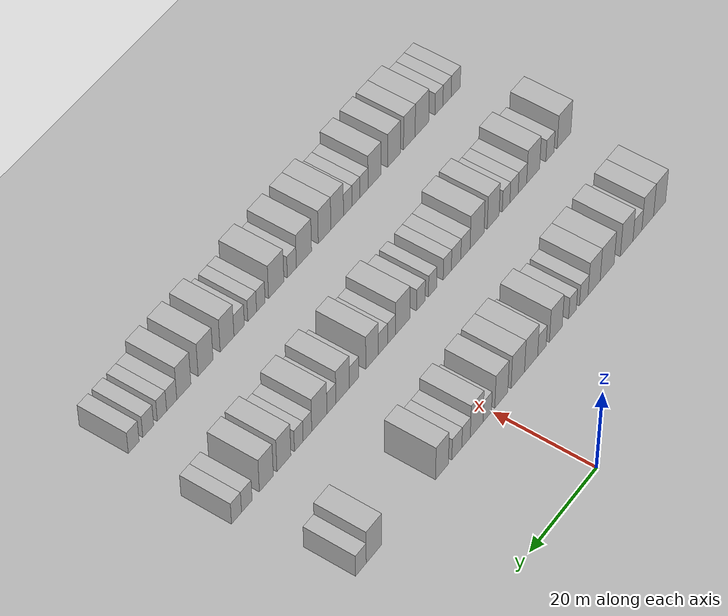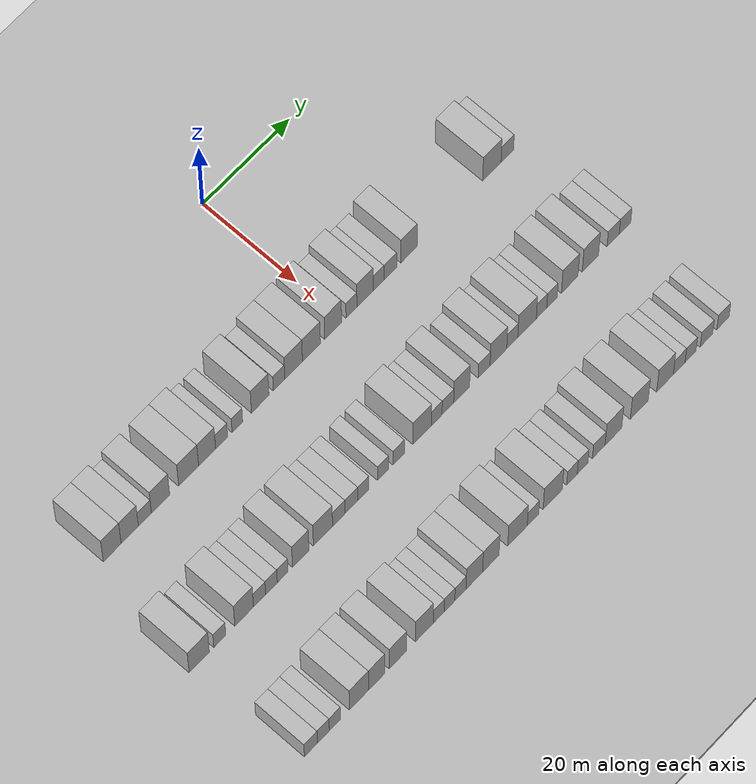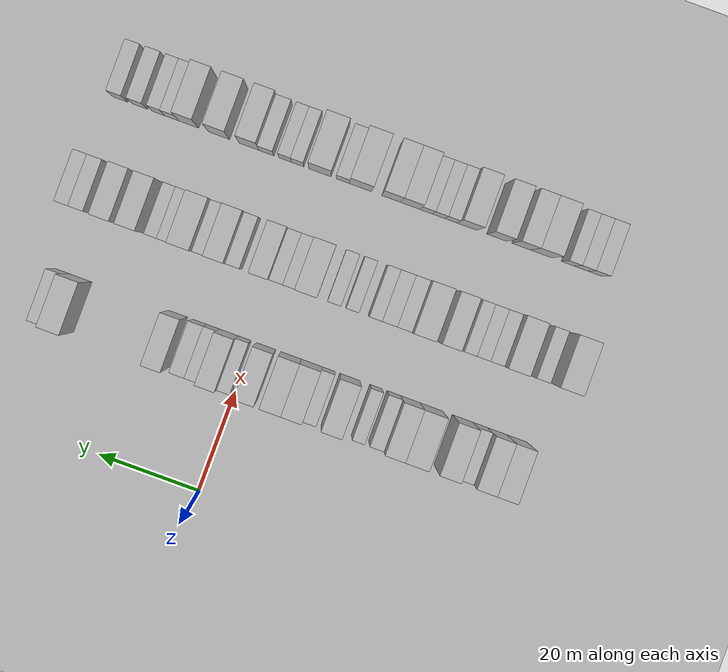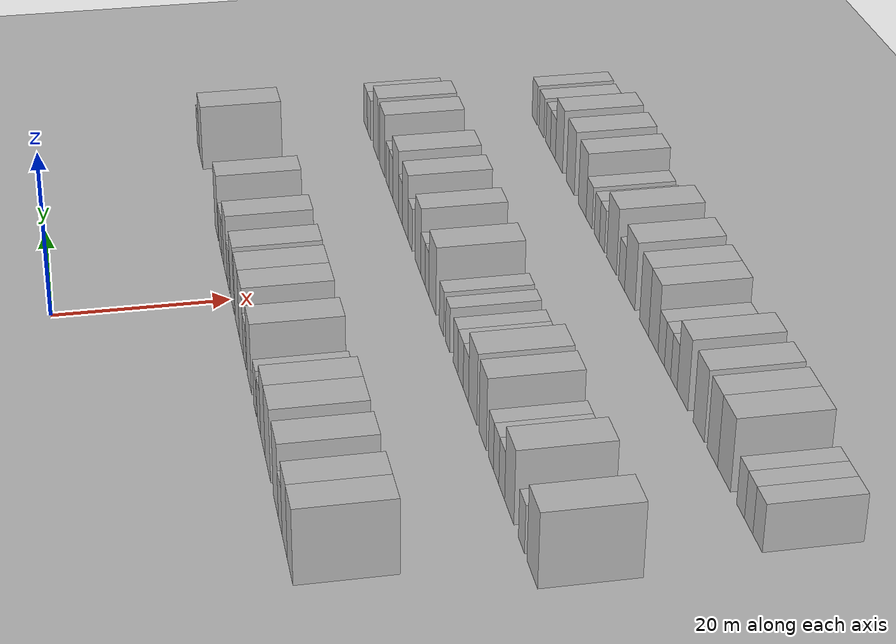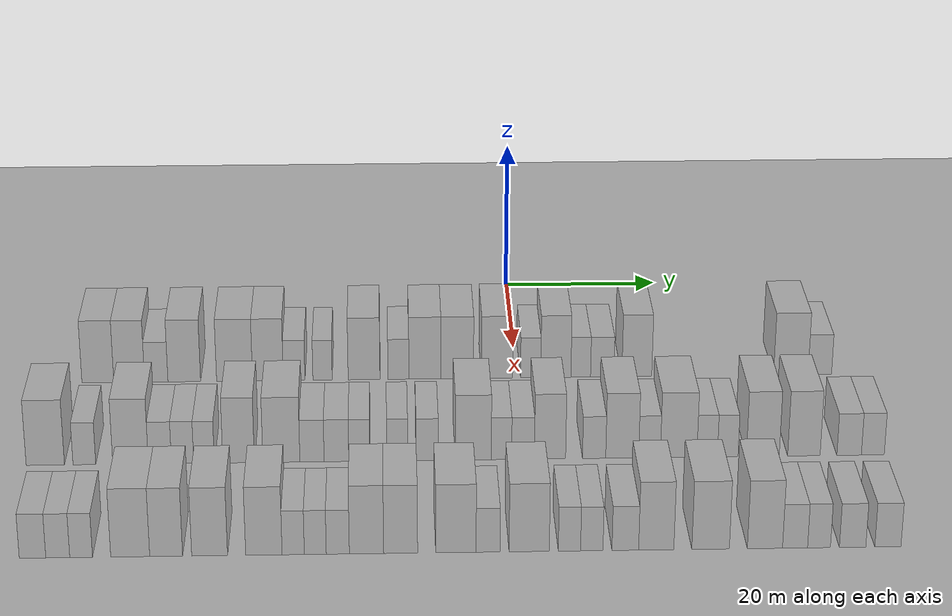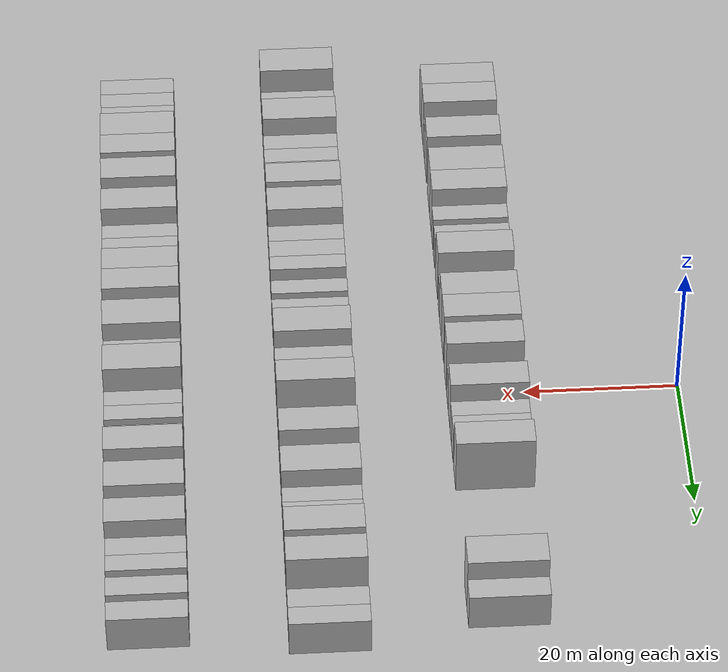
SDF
<sdf version="1.6">
 <world name="default">
  <include><name>ground_plane_1</name><uri>model://HANNAS_ground_plane</uri></include>
  <include>
   <name>ground_plane_2</name>
   <uri>model://HANNAS_ground_plane</uri>
   <pose>100 0 0  0 0 0</pose>
  </include>
  <model name="building_50">
   <static>1</static>
   <pose>25.0000 -52.4104 0 0.000000 0.000000 0.000000</pose>
   <link name="link">
    <pose>0 0 4.50 0 0 0</pose>
    <collision name="collision"><geometry><box><size>10.0000 3.9737 9.0000</size></box></geometry></collision>
    <visual name="visual">
     <cast_shadows>0</cast_shadows>
     <geometry><box><size>10.0000 3.9737 9.0000</size></box></geometry>
     <material>
      <script>
       <uri>model://HANNAS_wall/materials/scripts</uri>
       <uri>model://HANNAS_wall/materials/textures</uri>
       <name>vrc/HANNAS_wall</name>
      </script>
     </material>
    </visual>
   </link>
  </model>
  <model name="building_51">
   <static>1</static>
   <pose>25.0000 -48.5002 0 0.000000 0.000000 0.000000</pose>
   <link name="link">
    <pose>0 0 4.50 0 0 0</pose>
    <collision name="collision"><geometry><box><size>10.0000 3.8467 9.0000</size></box></geometry></collision>
    <visual name="visual">
     <cast_shadows>0</cast_shadows>
     <geometry><box><size>10.0000 3.8467 9.0000</size></box></geometry>
     <material>
      <script>
       <uri>model://HANNAS_wall/materials/scripts</uri>
       <uri>model://HANNAS_wall/materials/textures</uri>
       <name>vrc/HANNAS_wall</name>
      </script>
     </material>
    </visual>
   </link>
  </model>
  <model name="building_52">
   <static>1</static>
   <pose>25.0000 -45.1239 0 0.000000 0.000000 0.000000</pose>
   <link name="link">
    <pose>0 0 3.00 0 0 0</pose>
    <collision name="collision"><geometry><box><size>10.0000 2.9060 6.0000</size></box></geometry></collision>
    <visual name="visual">
     <cast_shadows>0</cast_shadows>
     <geometry><box><size>10.0000 2.9060 6.0000</size></box></geometry>
     <material>
      <script>
       <uri>model://HANNAS_wall/materials/scripts</uri>
       <uri>model://HANNAS_wall/materials/textures</uri>
       <name>vrc/HANNAS_wall</name>
      </script>
     </material>
    </visual>
   </link>
  </model>
  <model name="building_53">
   <static>1</static>
   <pose>25.0000 -41.6322 0 0.000000 0.000000 0.000000</pose>
   <link name="link">
    <pose>0 0 4.50 0 0 0</pose>
    <collision name="collision"><geometry><box><size>10.0000 4.0774 9.0000</size></box></geometry></collision>
    <visual name="visual">
     <cast_shadows>0</cast_shadows>
     <geometry><box><size>10.0000 4.0774 9.0000</size></box></geometry>
     <material>
      <script>
       <uri>model://HANNAS_wall/materials/scripts</uri>
       <uri>model://HANNAS_wall/materials/textures</uri>
       <name>vrc/HANNAS_wall</name>
      </script>
     </material>
    </visual>
   </link>
  </model>
  <model name="building_54">
   <static>1</static>
   <pose>25.0000 -35.3489 0 0.000000 0.000000 0.000000</pose>
   <link name="link">
    <pose>0 0 4.50 0 0 0</pose>
    <collision name="collision"><geometry><box><size>10.0000 4.4893 9.0000</size></box></geometry></collision>
    <visual name="visual">
     <cast_shadows>0</cast_shadows>
     <geometry><box><size>10.0000 4.4893 9.0000</size></box></geometry>
     <material>
      <script>
       <uri>model://HANNAS_wall/materials/scripts</uri>
       <uri>model://HANNAS_wall/materials/textures</uri>
       <name>vrc/HANNAS_wall</name>
      </script>
     </material>
    </visual>
   </link>
  </model>
  <model name="building_55">
   <static>1</static>
   <pose>25.0000 -31.1800 0 0.000000 0.000000 0.000000</pose>
   <link name="link">
    <pose>0 0 4.50 0 0 0</pose>
    <collision name="collision"><geometry><box><size>10.0000 3.8484 9.0000</size></box></geometry></collision>
    <visual name="visual">
     <cast_shadows>0</cast_shadows>
     <geometry><box><size>10.0000 3.8484 9.0000</size></box></geometry>
     <material>
      <script>
       <uri>model://HANNAS_wall/materials/scripts</uri>
       <uri>model://HANNAS_wall/materials/textures</uri>
       <name>vrc/HANNAS_wall</name>
      </script>
     </material>
    </visual>
   </link>
  </model>
  <model name="building_56">
   <static>1</static>
   <pose>25.0000 -27.9045 0 0.000000 0.000000 0.000000</pose>
   <link name="link">
    <pose>0 0 3.00 0 0 0</pose>
    <collision name="collision"><geometry><box><size>10.0000 2.7028 6.0000</size></box></geometry></collision>
    <visual name="visual">
     <cast_shadows>0</cast_shadows>
     <geometry><box><size>10.0000 2.7028 6.0000</size></box></geometry>
     <material>
      <script>
       <uri>model://HANNAS_wall/materials/scripts</uri>
       <uri>model://HANNAS_wall/materials/textures</uri>
       <name>vrc/HANNAS_wall</name>
      </script>
     </material>
    </visual>
   </link>
  </model>
  <model name="building_57">
   <static>1</static>
   <pose>25.0000 -24.3475 0 0.000000 0.000000 0.000000</pose>
   <link name="link">
    <pose>0 0 3.00 0 0 0</pose>
    <collision name="collision"><geometry><box><size>10.0000 2.4111 6.0000</size></box></geometry></collision>
    <visual name="visual">
     <cast_shadows>0</cast_shadows>
     <geometry><box><size>10.0000 2.4111 6.0000</size></box></geometry>
     <material>
      <script>
       <uri>model://HANNAS_wall/materials/scripts</uri>
       <uri>model://HANNAS_wall/materials/textures</uri>
       <name>vrc/HANNAS_wall</name>
      </script>
     </material>
    </visual>
   </link>
  </model>
  <model name="building_58">
   <static>1</static>
   <pose>25.0000 -19.1495 0 0.000000 0.000000 0.000000</pose>
   <link name="link">
    <pose>0 0 4.50 0 0 0</pose>
    <collision name="collision"><geometry><box><size>10.0000 3.9849 9.0000</size></box></geometry></collision>
    <visual name="visual">
     <cast_shadows>0</cast_shadows>
     <geometry><box><size>10.0000 3.9849 9.0000</size></box></geometry>
     <material>
      <script>
       <uri>model://HANNAS_wall/materials/scripts</uri>
       <uri>model://HANNAS_wall/materials/textures</uri>
       <name>vrc/HANNAS_wall</name>
      </script>
     </material>
    </visual>
   </link>
  </model>
  <model name="building_59">
   <static>1</static>
   <pose>25.0000 -14.8439 0 0.000000 0.000000 0.000000</pose>
   <link name="link">
    <pose>0 0 3.00 0 0 0</pose>
    <collision name="collision"><geometry><box><size>10.0000 2.6263 6.0000</size></box></geometry></collision>
    <visual name="visual">
     <cast_shadows>0</cast_shadows>
     <geometry><box><size>10.0000 2.6263 6.0000</size></box></geometry>
     <material>
      <script>
       <uri>model://HANNAS_wall/materials/scripts</uri>
       <uri>model://HANNAS_wall/materials/textures</uri>
       <name>vrc/HANNAS_wall</name>
      </script>
     </material>
    </visual>
   </link>
  </model>
  <model name="building_60">
   <static>1</static>
   <pose>25.0000 -11.5195 0 0.000000 0.000000 0.000000</pose>
   <link name="link">
    <pose>0 0 4.50 0 0 0</pose>
    <collision name="collision"><geometry><box><size>10.0000 4.0225 9.0000</size></box></geometry></collision>
    <visual name="visual">
     <cast_shadows>0</cast_shadows>
     <geometry><box><size>10.0000 4.0225 9.0000</size></box></geometry>
     <material>
      <script>
       <uri>model://HANNAS_wall/materials/scripts</uri>
       <uri>model://HANNAS_wall/materials/textures</uri>
       <name>vrc/HANNAS_wall</name>
      </script>
     </material>
    </visual>
   </link>
  </model>
  <model name="building_61">
   <static>1</static>
   <pose>25.0000 -7.4637 0 0.000000 0.000000 0.000000</pose>
   <link name="link">
    <pose>0 0 4.50 0 0 0</pose>
    <collision name="collision"><geometry><box><size>10.0000 4.0891 9.0000</size></box></geometry></collision>
    <visual name="visual">
     <cast_shadows>0</cast_shadows>
     <geometry><box><size>10.0000 4.0891 9.0000</size></box></geometry>
     <material>
      <script>
       <uri>model://HANNAS_wall/materials/scripts</uri>
       <uri>model://HANNAS_wall/materials/textures</uri>
       <name>vrc/HANNAS_wall</name>
      </script>
     </material>
    </visual>
   </link>
  </model>
  <model name="building_62">
   <static>1</static>
   <pose>25.0000 -2.4690 0 0.000000 0.000000 0.000000</pose>
   <link name="link">
    <pose>0 0 4.50 0 0 0</pose>
    <collision name="collision"><geometry><box><size>10.0000 3.9004 9.0000</size></box></geometry></collision>
    <visual name="visual">
     <cast_shadows>0</cast_shadows>
     <geometry><box><size>10.0000 3.9004 9.0000</size></box></geometry>
     <material>
      <script>
       <uri>model://HANNAS_wall/materials/scripts</uri>
       <uri>model://HANNAS_wall/materials/textures</uri>
       <name>vrc/HANNAS_wall</name>
      </script>
     </material>
    </visual>
   </link>
  </model>
  <model name="building_63">
   <static>1</static>
   <pose>25.0000 1.7463 0 0.000000 0.000000 0.000000</pose>
   <link name="link">
    <pose>0 0 3.00 0 0 0</pose>
    <collision name="collision"><geometry><box><size>10.0000 2.5301 6.0000</size></box></geometry></collision>
    <visual name="visual">
     <cast_shadows>0</cast_shadows>
     <geometry><box><size>10.0000 2.5301 6.0000</size></box></geometry>
     <material>
      <script>
       <uri>model://HANNAS_wall/materials/scripts</uri>
       <uri>model://HANNAS_wall/materials/textures</uri>
       <name>vrc/HANNAS_wall</name>
      </script>
     </material>
    </visual>
   </link>
  </model>
  <model name="building_64">
   <static>1</static>
   <pose>25.0000 4.9038 0 0.000000 0.000000 0.000000</pose>
   <link name="link">
    <pose>0 0 4.50 0 0 0</pose>
    <collision name="collision"><geometry><box><size>10.0000 3.7849 9.0000</size></box></geometry></collision>
    <visual name="visual">
     <cast_shadows>0</cast_shadows>
     <geometry><box><size>10.0000 3.7849 9.0000</size></box></geometry>
     <material>
      <script>
       <uri>model://HANNAS_wall/materials/scripts</uri>
       <uri>model://HANNAS_wall/materials/textures</uri>
       <name>vrc/HANNAS_wall</name>
      </script>
     </material>
    </visual>
   </link>
  </model>
  <model name="building_65">
   <static>1</static>
   <pose>25.0000 8.0328 0 0.000000 0.000000 0.000000</pose>
   <link name="link">
    <pose>0 0 3.00 0 0 0</pose>
    <collision name="collision"><geometry><box><size>10.0000 2.4731 6.0000</size></box></geometry></collision>
    <visual name="visual">
     <cast_shadows>0</cast_shadows>
     <geometry><box><size>10.0000 2.4731 6.0000</size></box></geometry>
     <material>
      <script>
       <uri>model://HANNAS_wall/materials/scripts</uri>
       <uri>model://HANNAS_wall/materials/textures</uri>
       <name>vrc/HANNAS_wall</name>
      </script>
     </material>
    </visual>
   </link>
  </model>
  <model name="building_66">
   <static>1</static>
   <pose>25.0000 10.7379 0 0.000000 0.000000 0.000000</pose>
   <link name="link">
    <pose>0 0 3.00 0 0 0</pose>
    <collision name="collision"><geometry><box><size>10.0000 2.9371 6.0000</size></box></geometry></collision>
    <visual name="visual">
     <cast_shadows>0</cast_shadows>
     <geometry><box><size>10.0000 2.9371 6.0000</size></box></geometry>
     <material>
      <script>
       <uri>model://HANNAS_wall/materials/scripts</uri>
       <uri>model://HANNAS_wall/materials/textures</uri>
       <name>vrc/HANNAS_wall</name>
      </script>
     </material>
    </visual>
   </link>
  </model>
  <model name="building_67">
   <static>1</static>
   <pose>25.0000 15.0855 0 0.000000 0.000000 0.000000</pose>
   <link name="link">
    <pose>0 0 4.50 0 0 0</pose>
    <collision name="collision"><geometry><box><size>10.0000 3.7581 9.0000</size></box></geometry></collision>
    <visual name="visual">
     <cast_shadows>0</cast_shadows>
     <geometry><box><size>10.0000 3.7581 9.0000</size></box></geometry>
     <material>
      <script>
       <uri>model://HANNAS_wall/materials/scripts</uri>
       <uri>model://HANNAS_wall/materials/textures</uri>
       <name>vrc/HANNAS_wall</name>
      </script>
     </material>
    </visual>
   </link>
  </model>
  <model name="building_68">
   <static>1</static>
   <pose>25.0000 34.4999 0 0.000000 0.000000 0.000000</pose>
   <link name="link">
    <pose>0 0 4.50 0 0 0</pose>
    <collision name="collision"><geometry><box><size>10.0000 4.3569 9.0000</size></box></geometry></collision>
    <visual name="visual">
     <cast_shadows>0</cast_shadows>
     <geometry><box><size>10.0000 4.3569 9.0000</size></box></geometry>
     <material>
      <script>
       <uri>model://HANNAS_wall/materials/scripts</uri>
       <uri>model://HANNAS_wall/materials/textures</uri>
       <name>vrc/HANNAS_wall</name>
      </script>
     </material>
    </visual>
   </link>
  </model>
  <model name="building_69">
   <static>1</static>
   <pose>25.0000 38.1599 0 0.000000 0.000000 0.000000</pose>
   <link name="link">
    <pose>0 0 3.00 0 0 0</pose>
    <collision name="collision"><geometry><box><size>10.0000 2.9632 6.0000</size></box></geometry></collision>
    <visual name="visual">
     <cast_shadows>0</cast_shadows>
     <geometry><box><size>10.0000 2.9632 6.0000</size></box></geometry>
     <material>
      <script>
       <uri>model://HANNAS_wall/materials/scripts</uri>
       <uri>model://HANNAS_wall/materials/textures</uri>
       <name>vrc/HANNAS_wall</name>
      </script>
     </material>
    </visual>
   </link>
  </model>
  <model name="building_177">
   <static>1</static>
   <pose>47.0000 -56.5158 0 0.000000 0.000000 0.000000</pose>
   <link name="link">
    <pose>0 0 4.50 0 0 0</pose>
    <collision name="collision"><geometry><box><size>10.0000 4.4858 9.0000</size></box></geometry></collision>
    <visual name="visual">
     <cast_shadows>0</cast_shadows>
     <geometry><box><size>10.0000 4.4858 9.0000</size></box></geometry>
     <material>
      <script>
       <uri>model://HANNAS_wall/materials/scripts</uri>
       <uri>model://HANNAS_wall/materials/textures</uri>
       <name>vrc/HANNAS_wall</name>
      </script>
     </material>
    </visual>
   </link>
  </model>
  <model name="building_178">
   <static>1</static>
   <pose>47.0000 -51.9385 0 0.000000 0.000000 0.000000</pose>
   <link name="link">
    <pose>0 0 3.00 0 0 0</pose>
    <collision name="collision"><geometry><box><size>10.0000 2.6687 6.0000</size></box></geometry></collision>
    <visual name="visual">
     <cast_shadows>0</cast_shadows>
     <geometry><box><size>10.0000 2.6687 6.0000</size></box></geometry>
     <material>
      <script>
       <uri>model://HANNAS_wall/materials/scripts</uri>
       <uri>model://HANNAS_wall/materials/textures</uri>
       <name>vrc/HANNAS_wall</name>
      </script>
     </material>
    </visual>
   </link>
  </model>
  <model name="building_179">
   <static>1</static>
   <pose>47.0000 -46.5166 0 0.000000 0.000000 0.000000</pose>
   <link name="link">
    <pose>0 0 4.50 0 0 0</pose>
    <collision name="collision"><geometry><box><size>10.0000 4.1752 9.0000</size></box></geometry></collision>
    <visual name="visual">
     <cast_shadows>0</cast_shadows>
     <geometry><box><size>10.0000 4.1752 9.0000</size></box></geometry>
     <material>
      <script>
       <uri>model://HANNAS_wall/materials/scripts</uri>
       <uri>model://HANNAS_wall/materials/textures</uri>
       <name>vrc/HANNAS_wall</name>
      </script>
     </material>
    </visual>
   </link>
  </model>
  <model name="building_180">
   <static>1</static>
   <pose>47.0000 -43.0736 0 0.000000 0.000000 0.000000</pose>
   <link name="link">
    <pose>0 0 3.00 0 0 0</pose>
    <collision name="collision"><geometry><box><size>10.0000 2.7109 6.0000</size></box></geometry></collision>
    <visual name="visual">
     <cast_shadows>0</cast_shadows>
     <geometry><box><size>10.0000 2.7109 6.0000</size></box></geometry>
     <material>
      <script>
       <uri>model://HANNAS_wall/materials/scripts</uri>
       <uri>model://HANNAS_wall/materials/textures</uri>
       <name>vrc/HANNAS_wall</name>
      </script>
     </material>
    </visual>
   </link>
  </model>
  <model name="building_181">
   <static>1</static>
   <pose>47.0000 -40.4083 0 0.000000 0.000000 0.000000</pose>
   <link name="link">
    <pose>0 0 3.00 0 0 0</pose>
    <collision name="collision"><geometry><box><size>10.0000 2.6197 6.0000</size></box></geometry></collision>
    <visual name="visual">
     <cast_shadows>0</cast_shadows>
     <geometry><box><size>10.0000 2.6197 6.0000</size></box></geometry>
     <material>
      <script>
       <uri>model://HANNAS_wall/materials/scripts</uri>
       <uri>model://HANNAS_wall/materials/textures</uri>
       <name>vrc/HANNAS_wall</name>
      </script>
     </material>
    </visual>
   </link>
  </model>
  <model name="building_182">
   <static>1</static>
   <pose>47.0000 -37.8873 0 0.000000 0.000000 0.000000</pose>
   <link name="link">
    <pose>0 0 3.00 0 0 0</pose>
    <collision name="collision"><geometry><box><size>10.0000 2.4223 6.0000</size></box></geometry></collision>
    <visual name="visual">
     <cast_shadows>0</cast_shadows>
     <geometry><box><size>10.0000 2.4223 6.0000</size></box></geometry>
     <material>
      <script>
       <uri>model://HANNAS_wall/materials/scripts</uri>
       <uri>model://HANNAS_wall/materials/textures</uri>
       <name>vrc/HANNAS_wall</name>
      </script>
     </material>
    </visual>
   </link>
  </model>
  <model name="building_183">
   <static>1</static>
   <pose>47.0000 -33.8210 0 0.000000 0.000000 0.000000</pose>
   <link name="link">
    <pose>0 0 4.50 0 0 0</pose>
    <collision name="collision"><geometry><box><size>10.0000 3.7102 9.0000</size></box></geometry></collision>
    <visual name="visual">
     <cast_shadows>0</cast_shadows>
     <geometry><box><size>10.0000 3.7102 9.0000</size></box></geometry>
     <material>
      <script>
       <uri>model://HANNAS_wall/materials/scripts</uri>
       <uri>model://HANNAS_wall/materials/textures</uri>
       <name>vrc/HANNAS_wall</name>
      </script>
     </material>
    </visual>
   </link>
  </model>
  <model name="building_184">
   <static>1</static>
   <pose>47.0000 -28.7900 0 0.000000 0.000000 0.000000</pose>
   <link name="link">
    <pose>0 0 4.50 0 0 0</pose>
    <collision name="collision"><geometry><box><size>10.0000 4.3517 9.0000</size></box></geometry></collision>
    <visual name="visual">
     <cast_shadows>0</cast_shadows>
     <geometry><box><size>10.0000 4.3517 9.0000</size></box></geometry>
     <material>
      <script>
       <uri>model://HANNAS_wall/materials/scripts</uri>
       <uri>model://HANNAS_wall/materials/textures</uri>
       <name>vrc/HANNAS_wall</name>
      </script>
     </material>
    </visual>
   </link>
  </model>
  <model name="building_185">
   <static>1</static>
   <pose>47.0000 -25.1877 0 0.000000 0.000000 0.000000</pose>
   <link name="link">
    <pose>0 0 3.00 0 0 0</pose>
    <collision name="collision"><geometry><box><size>10.0000 2.8530 6.0000</size></box></geometry></collision>
    <visual name="visual">
     <cast_shadows>0</cast_shadows>
     <geometry><box><size>10.0000 2.8530 6.0000</size></box></geometry>
     <material>
      <script>
       <uri>model://HANNAS_wall/materials/scripts</uri>
       <uri>model://HANNAS_wall/materials/textures</uri>
       <name>vrc/HANNAS_wall</name>
      </script>
     </material>
    </visual>
   </link>
  </model>
  <model name="building_186">
   <static>1</static>
   <pose>47.0000 -22.3085 0 0.000000 0.000000 0.000000</pose>
   <link name="link">
    <pose>0 0 3.00 0 0 0</pose>
    <collision name="collision"><geometry><box><size>10.0000 2.9053 6.0000</size></box></geometry></collision>
    <visual name="visual">
     <cast_shadows>0</cast_shadows>
     <geometry><box><size>10.0000 2.9053 6.0000</size></box></geometry>
     <material>
      <script>
       <uri>model://HANNAS_wall/materials/scripts</uri>
       <uri>model://HANNAS_wall/materials/textures</uri>
       <name>vrc/HANNAS_wall</name>
      </script>
     </material>
    </visual>
   </link>
  </model>
  <model name="building_187">
   <static>1</static>
   <pose>47.0000 -19.6124 0 0.000000 0.000000 0.000000</pose>
   <link name="link">
    <pose>0 0 3.00 0 0 0</pose>
    <collision name="collision"><geometry><box><size>10.0000 2.4869 6.0000</size></box></geometry></collision>
    <visual name="visual">
     <cast_shadows>0</cast_shadows>
     <geometry><box><size>10.0000 2.4869 6.0000</size></box></geometry>
     <material>
      <script>
       <uri>model://HANNAS_wall/materials/scripts</uri>
       <uri>model://HANNAS_wall/materials/textures</uri>
       <name>vrc/HANNAS_wall</name>
      </script>
     </material>
    </visual>
   </link>
  </model>
  <model name="building_188">
   <static>1</static>
   <pose>47.0000 -15.1348 0 0.000000 0.000000 0.000000</pose>
   <link name="link">
    <pose>0 0 3.00 0 0 0</pose>
    <collision name="collision"><geometry><box><size>10.0000 2.4683 6.0000</size></box></geometry></collision>
    <visual name="visual">
     <cast_shadows>0</cast_shadows>
     <geometry><box><size>10.0000 2.4683 6.0000</size></box></geometry>
     <material>
      <script>
       <uri>model://HANNAS_wall/materials/scripts</uri>
       <uri>model://HANNAS_wall/materials/textures</uri>
       <name>vrc/HANNAS_wall</name>
      </script>
     </material>
    </visual>
   </link>
  </model>
  <model name="building_189">
   <static>1</static>
   <pose>47.0000 -11.5987 0 0.000000 0.000000 0.000000</pose>
   <link name="link">
    <pose>0 0 3.00 0 0 0</pose>
    <collision name="collision"><geometry><box><size>10.0000 2.6040 6.0000</size></box></geometry></collision>
    <visual name="visual">
     <cast_shadows>0</cast_shadows>
     <geometry><box><size>10.0000 2.6040 6.0000</size></box></geometry>
     <material>
      <script>
       <uri>model://HANNAS_wall/materials/scripts</uri>
       <uri>model://HANNAS_wall/materials/textures</uri>
       <name>vrc/HANNAS_wall</name>
      </script>
     </material>
    </visual>
   </link>
  </model>
  <model name="building_190">
   <static>1</static>
   <pose>47.0000 -6.1698 0 0.000000 0.000000 0.000000</pose>
   <link name="link">
    <pose>0 0 4.50 0 0 0</pose>
    <collision name="collision"><geometry><box><size>10.0000 4.2538 9.0000</size></box></geometry></collision>
    <visual name="visual">
     <cast_shadows>0</cast_shadows>
     <geometry><box><size>10.0000 4.2538 9.0000</size></box></geometry>
     <material>
      <script>
       <uri>model://HANNAS_wall/materials/scripts</uri>
       <uri>model://HANNAS_wall/materials/textures</uri>
       <name>vrc/HANNAS_wall</name>
      </script>
     </material>
    </visual>
   </link>
  </model>
  <model name="building_191">
   <static>1</static>
   <pose>47.0000 -2.8379 0 0.000000 0.000000 0.000000</pose>
   <link name="link">
    <pose>0 0 3.00 0 0 0</pose>
    <collision name="collision"><geometry><box><size>10.0000 2.4101 6.0000</size></box></geometry></collision>
    <visual name="visual">
     <cast_shadows>0</cast_shadows>
     <geometry><box><size>10.0000 2.4101 6.0000</size></box></geometry>
     <material>
      <script>
       <uri>model://HANNAS_wall/materials/scripts</uri>
       <uri>model://HANNAS_wall/materials/textures</uri>
       <name>vrc/HANNAS_wall</name>
      </script>
     </material>
    </visual>
   </link>
  </model>
  <model name="building_192">
   <static>1</static>
   <pose>47.0000 -0.2905 0 0.000000 0.000000 0.000000</pose>
   <link name="link">
    <pose>0 0 3.00 0 0 0</pose>
    <collision name="collision"><geometry><box><size>10.0000 2.6847 6.0000</size></box></geometry></collision>
    <visual name="visual">
     <cast_shadows>0</cast_shadows>
     <geometry><box><size>10.0000 2.6847 6.0000</size></box></geometry>
     <material>
      <script>
       <uri>model://HANNAS_wall/materials/scripts</uri>
       <uri>model://HANNAS_wall/materials/textures</uri>
       <name>vrc/HANNAS_wall</name>
      </script>
     </material>
    </visual>
   </link>
  </model>
  <model name="building_193">
   <static>1</static>
   <pose>47.0000 2.8930 0 0.000000 0.000000 0.000000</pose>
   <link name="link">
    <pose>0 0 4.50 0 0 0</pose>
    <collision name="collision"><geometry><box><size>10.0000 3.6822 9.0000</size></box></geometry></collision>
    <visual name="visual">
     <cast_shadows>0</cast_shadows>
     <geometry><box><size>10.0000 3.6822 9.0000</size></box></geometry>
     <material>
      <script>
       <uri>model://HANNAS_wall/materials/scripts</uri>
       <uri>model://HANNAS_wall/materials/textures</uri>
       <name>vrc/HANNAS_wall</name>
      </script>
     </material>
    </visual>
   </link>
  </model>
  <model name="building_194">
   <static>1</static>
   <pose>47.0000 8.1076 0 0.000000 0.000000 0.000000</pose>
   <link name="link">
    <pose>0 0 3.00 0 0 0</pose>
    <collision name="collision"><geometry><box><size>10.0000 2.7470 6.0000</size></box></geometry></collision>
    <visual name="visual">
     <cast_shadows>0</cast_shadows>
     <geometry><box><size>10.0000 2.7470 6.0000</size></box></geometry>
     <material>
      <script>
       <uri>model://HANNAS_wall/materials/scripts</uri>
       <uri>model://HANNAS_wall/materials/textures</uri>
       <name>vrc/HANNAS_wall</name>
      </script>
     </material>
    </visual>
   </link>
  </model>
  <model name="building_195">
   <static>1</static>
   <pose>47.0000 11.4293 0 0.000000 0.000000 0.000000</pose>
   <link name="link">
    <pose>0 0 4.50 0 0 0</pose>
    <collision name="collision"><geometry><box><size>10.0000 3.8964 9.0000</size></box></geometry></collision>
    <visual name="visual">
     <cast_shadows>0</cast_shadows>
     <geometry><box><size>10.0000 3.8964 9.0000</size></box></geometry>
     <material>
      <script>
       <uri>model://HANNAS_wall/materials/scripts</uri>
       <uri>model://HANNAS_wall/materials/textures</uri>
       <name>vrc/HANNAS_wall</name>
      </script>
     </material>
    </visual>
   </link>
  </model>
  <model name="building_196">
   <static>1</static>
   <pose>47.0000 14.6610 0 0.000000 0.000000 0.000000</pose>
   <link name="link">
    <pose>0 0 3.00 0 0 0</pose>
    <collision name="collision"><geometry><box><size>10.0000 2.5671 6.0000</size></box></geometry></collision>
    <visual name="visual">
     <cast_shadows>0</cast_shadows>
     <geometry><box><size>10.0000 2.5671 6.0000</size></box></geometry>
     <material>
      <script>
       <uri>model://HANNAS_wall/materials/scripts</uri>
       <uri>model://HANNAS_wall/materials/textures</uri>
       <name>vrc/HANNAS_wall</name>
      </script>
     </material>
    </visual>
   </link>
  </model>
  <model name="building_197">
   <static>1</static>
   <pose>47.0000 18.1102 0 0.000000 0.000000 0.000000</pose>
   <link name="link">
    <pose>0 0 4.50 0 0 0</pose>
    <collision name="collision"><geometry><box><size>10.0000 4.3313 9.0000</size></box></geometry></collision>
    <visual name="visual">
     <cast_shadows>0</cast_shadows>
     <geometry><box><size>10.0000 4.3313 9.0000</size></box></geometry>
     <material>
      <script>
       <uri>model://HANNAS_wall/materials/scripts</uri>
       <uri>model://HANNAS_wall/materials/textures</uri>
       <name>vrc/HANNAS_wall</name>
      </script>
     </material>
    </visual>
   </link>
  </model>
  <model name="building_198">
   <static>1</static>
   <pose>47.0000 21.4933 0 0.000000 0.000000 0.000000</pose>
   <link name="link">
    <pose>0 0 3.00 0 0 0</pose>
    <collision name="collision"><geometry><box><size>10.0000 2.4349 6.0000</size></box></geometry></collision>
    <visual name="visual">
     <cast_shadows>0</cast_shadows>
     <geometry><box><size>10.0000 2.4349 6.0000</size></box></geometry>
     <material>
      <script>
       <uri>model://HANNAS_wall/materials/scripts</uri>
       <uri>model://HANNAS_wall/materials/textures</uri>
       <name>vrc/HANNAS_wall</name>
      </script>
     </material>
    </visual>
   </link>
  </model>
  <model name="building_199">
   <static>1</static>
   <pose>47.0000 23.9336 0 0.000000 0.000000 0.000000</pose>
   <link name="link">
    <pose>0 0 3.00 0 0 0</pose>
    <collision name="collision"><geometry><box><size>10.0000 2.4458 6.0000</size></box></geometry></collision>
    <visual name="visual">
     <cast_shadows>0</cast_shadows>
     <geometry><box><size>10.0000 2.4458 6.0000</size></box></geometry>
     <material>
      <script>
       <uri>model://HANNAS_wall/materials/scripts</uri>
       <uri>model://HANNAS_wall/materials/textures</uri>
       <name>vrc/HANNAS_wall</name>
      </script>
     </material>
    </visual>
   </link>
  </model>
  <model name="building_200">
   <static>1</static>
   <pose>47.0000 28.1032 0 0.000000 0.000000 0.000000</pose>
   <link name="link">
    <pose>0 0 4.50 0 0 0</pose>
    <collision name="collision"><geometry><box><size>10.0000 3.8933 9.0000</size></box></geometry></collision>
    <visual name="visual">
     <cast_shadows>0</cast_shadows>
     <geometry><box><size>10.0000 3.8933 9.0000</size></box></geometry>
     <material>
      <script>
       <uri>model://HANNAS_wall/materials/scripts</uri>
       <uri>model://HANNAS_wall/materials/textures</uri>
       <name>vrc/HANNAS_wall</name>
      </script>
     </material>
    </visual>
   </link>
  </model>
  <model name="building_201">
   <static>1</static>
   <pose>47.0000 32.9784 0 0.000000 0.000000 0.000000</pose>
   <link name="link">
    <pose>0 0 4.50 0 0 0</pose>
    <collision name="collision"><geometry><box><size>10.0000 3.8571 9.0000</size></box></geometry></collision>
    <visual name="visual">
     <cast_shadows>0</cast_shadows>
     <geometry><box><size>10.0000 3.8571 9.0000</size></box></geometry>
     <material>
      <script>
       <uri>model://HANNAS_wall/materials/scripts</uri>
       <uri>model://HANNAS_wall/materials/textures</uri>
       <name>vrc/HANNAS_wall</name>
      </script>
     </material>
    </visual>
   </link>
  </model>
  <model name="building_202">
   <static>1</static>
   <pose>47.0000 38.3579 0 0.000000 0.000000 0.000000</pose>
   <link name="link">
    <pose>0 0 3.00 0 0 0</pose>
    <collision name="collision"><geometry><box><size>10.0000 2.9018 6.0000</size></box></geometry></collision>
    <visual name="visual">
     <cast_shadows>0</cast_shadows>
     <geometry><box><size>10.0000 2.9018 6.0000</size></box></geometry>
     <material>
      <script>
       <uri>model://HANNAS_wall/materials/scripts</uri>
       <uri>model://HANNAS_wall/materials/textures</uri>
       <name>vrc/HANNAS_wall</name>
      </script>
     </material>
    </visual>
   </link>
  </model>
  <model name="building_203">
   <static>1</static>
   <pose>47.0000 41.1713 0 0.000000 0.000000 0.000000</pose>
   <link name="link">
    <pose>0 0 3.00 0 0 0</pose>
    <collision name="collision"><geometry><box><size>10.0000 2.7251 6.0000</size></box></geometry></collision>
    <visual name="visual">
     <cast_shadows>0</cast_shadows>
     <geometry><box><size>10.0000 2.7251 6.0000</size></box></geometry>
     <material>
      <script>
       <uri>model://HANNAS_wall/materials/scripts</uri>
       <uri>model://HANNAS_wall/materials/textures</uri>
       <name>vrc/HANNAS_wall</name>
      </script>
     </material>
    </visual>
   </link>
  </model>
  <model name="building_290">
   <static>1</static>
   <pose>69.0000 -55.4795 0 0.000000 0.000000 0.000000</pose>
   <link name="link">
    <pose>0 0 3.00 0 0 0</pose>
    <collision name="collision"><geometry><box><size>10.0000 2.9141 6.0000</size></box></geometry></collision>
    <visual name="visual">
     <cast_shadows>0</cast_shadows>
     <geometry><box><size>10.0000 2.9141 6.0000</size></box></geometry>
     <material>
      <script>
       <uri>model://HANNAS_wall/materials/scripts</uri>
       <uri>model://HANNAS_wall/materials/textures</uri>
       <name>vrc/HANNAS_wall</name>
      </script>
     </material>
    </visual>
   </link>
  </model>
  <model name="building_291">
   <static>1</static>
   <pose>69.0000 -52.7063 0 0.000000 0.000000 0.000000</pose>
   <link name="link">
    <pose>0 0 3.00 0 0 0</pose>
    <collision name="collision"><geometry><box><size>10.0000 2.6323 6.0000</size></box></geometry></collision>
    <visual name="visual">
     <cast_shadows>0</cast_shadows>
     <geometry><box><size>10.0000 2.6323 6.0000</size></box></geometry>
     <material>
      <script>
       <uri>model://HANNAS_wall/materials/scripts</uri>
       <uri>model://HANNAS_wall/materials/textures</uri>
       <name>vrc/HANNAS_wall</name>
      </script>
     </material>
    </visual>
   </link>
  </model>
  <model name="building_292">
   <static>1</static>
   <pose>69.0000 -50.1383 0 0.000000 0.000000 0.000000</pose>
   <link name="link">
    <pose>0 0 3.00 0 0 0</pose>
    <collision name="collision"><geometry><box><size>10.0000 2.5036 6.0000</size></box></geometry></collision>
    <visual name="visual">
     <cast_shadows>0</cast_shadows>
     <geometry><box><size>10.0000 2.5036 6.0000</size></box></geometry>
     <material>
      <script>
       <uri>model://HANNAS_wall/materials/scripts</uri>
       <uri>model://HANNAS_wall/materials/textures</uri>
       <name>vrc/HANNAS_wall</name>
      </script>
     </material>
    </visual>
   </link>
  </model>
  <model name="building_293">
   <static>1</static>
   <pose>69.0000 -44.7415 0 0.000000 0.000000 0.000000</pose>
   <link name="link">
    <pose>0 0 4.50 0 0 0</pose>
    <collision name="collision"><geometry><box><size>10.0000 4.2902 9.0000</size></box></geometry></collision>
    <visual name="visual">
     <cast_shadows>0</cast_shadows>
     <geometry><box><size>10.0000 4.2902 9.0000</size></box></geometry>
     <material>
      <script>
       <uri>model://HANNAS_wall/materials/scripts</uri>
       <uri>model://HANNAS_wall/materials/textures</uri>
       <name>vrc/HANNAS_wall</name>
      </script>
     </material>
    </visual>
   </link>
  </model>
  <model name="building_294">
   <static>1</static>
   <pose>69.0000 -40.7859 0 0.000000 0.000000 0.000000</pose>
   <link name="link">
    <pose>0 0 4.50 0 0 0</pose>
    <collision name="collision"><geometry><box><size>10.0000 3.6210 9.0000</size></box></geometry></collision>
    <visual name="visual">
     <cast_shadows>0</cast_shadows>
     <geometry><box><size>10.0000 3.6210 9.0000</size></box></geometry>
     <material>
      <script>
       <uri>model://HANNAS_wall/materials/scripts</uri>
       <uri>model://HANNAS_wall/materials/textures</uri>
       <name>vrc/HANNAS_wall</name>
      </script>
     </material>
    </visual>
   </link>
  </model>
  <model name="building_295">
   <static>1</static>
   <pose>69.0000 -35.9999 0 0.000000 0.000000 0.000000</pose>
   <link name="link">
    <pose>0 0 4.50 0 0 0</pose>
    <collision name="collision"><geometry><box><size>10.0000 3.9510 9.0000</size></box></geometry></collision>
    <visual name="visual">
     <cast_shadows>0</cast_shadows>
     <geometry><box><size>10.0000 3.9510 9.0000</size></box></geometry>
     <material>
      <script>
       <uri>model://HANNAS_wall/materials/scripts</uri>
       <uri>model://HANNAS_wall/materials/textures</uri>
       <name>vrc/HANNAS_wall</name>
      </script>
     </material>
    </visual>
   </link>
  </model>
  <model name="building_296">
   <static>1</static>
   <pose>69.0000 -30.0180 0 0.000000 0.000000 0.000000</pose>
   <link name="link">
    <pose>0 0 4.50 0 0 0</pose>
    <collision name="collision"><geometry><box><size>10.0000 4.0127 9.0000</size></box></geometry></collision>
    <visual name="visual">
     <cast_shadows>0</cast_shadows>
     <geometry><box><size>10.0000 4.0127 9.0000</size></box></geometry>
     <material>
      <script>
       <uri>model://HANNAS_wall/materials/scripts</uri>
       <uri>model://HANNAS_wall/materials/textures</uri>
       <name>vrc/HANNAS_wall</name>
      </script>
     </material>
    </visual>
   </link>
  </model>
  <model name="building_297">
   <static>1</static>
   <pose>69.0000 -26.7851 0 0.000000 0.000000 0.000000</pose>
   <link name="link">
    <pose>0 0 3.00 0 0 0</pose>
    <collision name="collision"><geometry><box><size>10.0000 2.4532 6.0000</size></box></geometry></collision>
    <visual name="visual">
     <cast_shadows>0</cast_shadows>
     <geometry><box><size>10.0000 2.4532 6.0000</size></box></geometry>
     <material>
      <script>
       <uri>model://HANNAS_wall/materials/scripts</uri>
       <uri>model://HANNAS_wall/materials/textures</uri>
       <name>vrc/HANNAS_wall</name>
      </script>
     </material>
    </visual>
   </link>
  </model>
  <model name="building_298">
   <static>1</static>
   <pose>69.0000 -24.3476 0 0.000000 0.000000 0.000000</pose>
   <link name="link">
    <pose>0 0 3.00 0 0 0</pose>
    <collision name="collision"><geometry><box><size>10.0000 2.4218 6.0000</size></box></geometry></collision>
    <visual name="visual">
     <cast_shadows>0</cast_shadows>
     <geometry><box><size>10.0000 2.4218 6.0000</size></box></geometry>
     <material>
      <script>
       <uri>model://HANNAS_wall/materials/scripts</uri>
       <uri>model://HANNAS_wall/materials/textures</uri>
       <name>vrc/HANNAS_wall</name>
      </script>
     </material>
    </visual>
   </link>
  </model>
  <model name="building_299">
   <static>1</static>
   <pose>69.0000 -21.8621 0 0.000000 0.000000 0.000000</pose>
   <link name="link">
    <pose>0 0 3.00 0 0 0</pose>
    <collision name="collision"><geometry><box><size>10.0000 2.5493 6.0000</size></box></geometry></collision>
    <visual name="visual">
     <cast_shadows>0</cast_shadows>
     <geometry><box><size>10.0000 2.5493 6.0000</size></box></geometry>
     <material>
      <script>
       <uri>model://HANNAS_wall/materials/scripts</uri>
       <uri>model://HANNAS_wall/materials/textures</uri>
       <name>vrc/HANNAS_wall</name>
      </script>
     </material>
    </visual>
   </link>
  </model>
  <model name="building_300">
   <static>1</static>
   <pose>69.0000 -18.6900 0 0.000000 0.000000 0.000000</pose>
   <link name="link">
    <pose>0 0 4.50 0 0 0</pose>
    <collision name="collision"><geometry><box><size>10.0000 3.7948 9.0000</size></box></geometry></collision>
    <visual name="visual">
     <cast_shadows>0</cast_shadows>
     <geometry><box><size>10.0000 3.7948 9.0000</size></box></geometry>
     <material>
      <script>
       <uri>model://HANNAS_wall/materials/scripts</uri>
       <uri>model://HANNAS_wall/materials/textures</uri>
       <name>vrc/HANNAS_wall</name>
      </script>
     </material>
    </visual>
   </link>
  </model>
  <model name="building_301">
   <static>1</static>
   <pose>69.0000 -14.9187 0 0.000000 0.000000 0.000000</pose>
   <link name="link">
    <pose>0 0 4.50 0 0 0</pose>
    <collision name="collision"><geometry><box><size>10.0000 3.7478 9.0000</size></box></geometry></collision>
    <visual name="visual">
     <cast_shadows>0</cast_shadows>
     <geometry><box><size>10.0000 3.7478 9.0000</size></box></geometry>
     <material>
      <script>
       <uri>model://HANNAS_wall/materials/scripts</uri>
       <uri>model://HANNAS_wall/materials/textures</uri>
       <name>vrc/HANNAS_wall</name>
      </script>
     </material>
    </visual>
   </link>
  </model>
  <model name="building_302">
   <static>1</static>
   <pose>69.0000 -8.8072 0 0.000000 0.000000 0.000000</pose>
   <link name="link">
    <pose>0 0 4.50 0 0 0</pose>
    <collision name="collision"><geometry><box><size>10.0000 4.4751 9.0000</size></box></geometry></collision>
    <visual name="visual">
     <cast_shadows>0</cast_shadows>
     <geometry><box><size>10.0000 4.4751 9.0000</size></box></geometry>
     <material>
      <script>
       <uri>model://HANNAS_wall/materials/scripts</uri>
       <uri>model://HANNAS_wall/materials/textures</uri>
       <name>vrc/HANNAS_wall</name>
      </script>
     </material>
    </visual>
   </link>
  </model>
  <model name="building_303">
   <static>1</static>
   <pose>69.0000 -5.2452 0 0.000000 0.000000 0.000000</pose>
   <link name="link">
    <pose>0 0 3.00 0 0 0</pose>
    <collision name="collision"><geometry><box><size>10.0000 2.6489 6.0000</size></box></geometry></collision>
    <visual name="visual">
     <cast_shadows>0</cast_shadows>
     <geometry><box><size>10.0000 2.6489 6.0000</size></box></geometry>
     <material>
      <script>
       <uri>model://HANNAS_wall/materials/scripts</uri>
       <uri>model://HANNAS_wall/materials/textures</uri>
       <name>vrc/HANNAS_wall</name>
      </script>
     </material>
    </visual>
   </link>
  </model>
  <model name="building_304">
   <static>1</static>
   <pose>69.0000 -0.6952 0 0.000000 0.000000 0.000000</pose>
   <link name="link">
    <pose>0 0 4.50 0 0 0</pose>
    <collision name="collision"><geometry><box><size>10.0000 4.4511 9.0000</size></box></geometry></collision>
    <visual name="visual">
     <cast_shadows>0</cast_shadows>
     <geometry><box><size>10.0000 4.4511 9.0000</size></box></geometry>
     <material>
      <script>
       <uri>model://HANNAS_wall/materials/scripts</uri>
       <uri>model://HANNAS_wall/materials/textures</uri>
       <name>vrc/HANNAS_wall</name>
      </script>
     </material>
    </visual>
   </link>
  </model>
  <model name="building_305">
   <static>1</static>
   <pose>69.0000 3.7649 0 0.000000 0.000000 0.000000</pose>
   <link name="link">
    <pose>0 0 3.00 0 0 0</pose>
    <collision name="collision"><geometry><box><size>10.0000 2.4690 6.0000</size></box></geometry></collision>
    <visual name="visual">
     <cast_shadows>0</cast_shadows>
     <geometry><box><size>10.0000 2.4690 6.0000</size></box></geometry>
     <material>
      <script>
       <uri>model://HANNAS_wall/materials/scripts</uri>
       <uri>model://HANNAS_wall/materials/textures</uri>
       <name>vrc/HANNAS_wall</name>
      </script>
     </material>
    </visual>
   </link>
  </model>
  <model name="building_306">
   <static>1</static>
   <pose>69.0000 6.2410 0 0.000000 0.000000 0.000000</pose>
   <link name="link">
    <pose>0 0 3.00 0 0 0</pose>
    <collision name="collision"><geometry><box><size>10.0000 2.4832 6.0000</size></box></geometry></collision>
    <visual name="visual">
     <cast_shadows>0</cast_shadows>
     <geometry><box><size>10.0000 2.4832 6.0000</size></box></geometry>
     <material>
      <script>
       <uri>model://HANNAS_wall/materials/scripts</uri>
       <uri>model://HANNAS_wall/materials/textures</uri>
       <name>vrc/HANNAS_wall</name>
      </script>
     </material>
    </visual>
   </link>
  </model>
  <model name="building_307">
   <static>1</static>
   <pose>69.0000 9.9601 0 0.000000 0.000000 0.000000</pose>
   <link name="link">
    <pose>0 0 3.00 0 0 0</pose>
    <collision name="collision"><geometry><box><size>10.0000 2.9552 6.0000</size></box></geometry></collision>
    <visual name="visual">
     <cast_shadows>0</cast_shadows>
     <geometry><box><size>10.0000 2.9552 6.0000</size></box></geometry>
     <material>
      <script>
       <uri>model://HANNAS_wall/materials/scripts</uri>
       <uri>model://HANNAS_wall/materials/textures</uri>
       <name>vrc/HANNAS_wall</name>
      </script>
     </material>
    </visual>
   </link>
  </model>
  <model name="building_308">
   <static>1</static>
   <pose>69.0000 13.3926 0 0.000000 0.000000 0.000000</pose>
   <link name="link">
    <pose>0 0 4.50 0 0 0</pose>
    <collision name="collision"><geometry><box><size>10.0000 3.9097 9.0000</size></box></geometry></collision>
    <visual name="visual">
     <cast_shadows>0</cast_shadows>
     <geometry><box><size>10.0000 3.9097 9.0000</size></box></geometry>
     <material>
      <script>
       <uri>model://HANNAS_wall/materials/scripts</uri>
       <uri>model://HANNAS_wall/materials/textures</uri>
       <name>vrc/HANNAS_wall</name>
      </script>
     </material>
    </visual>
   </link>
  </model>
  <model name="building_309">
   <static>1</static>
   <pose>69.0000 19.4335 0 0.000000 0.000000 0.000000</pose>
   <link name="link">
    <pose>0 0 4.50 0 0 0</pose>
    <collision name="collision"><geometry><box><size>10.0000 4.1721 9.0000</size></box></geometry></collision>
    <visual name="visual">
     <cast_shadows>0</cast_shadows>
     <geometry><box><size>10.0000 4.1721 9.0000</size></box></geometry>
     <material>
      <script>
       <uri>model://HANNAS_wall/materials/scripts</uri>
       <uri>model://HANNAS_wall/materials/textures</uri>
       <name>vrc/HANNAS_wall</name>
      </script>
     </material>
    </visual>
   </link>
  </model>
  <model name="building_310">
   <static>1</static>
   <pose>69.0000 25.4760 0 0.000000 0.000000 0.000000</pose>
   <link name="link">
    <pose>0 0 4.50 0 0 0</pose>
    <collision name="collision"><geometry><box><size>10.0000 3.9130 9.0000</size></box></geometry></collision>
    <visual name="visual">
     <cast_shadows>0</cast_shadows>
     <geometry><box><size>10.0000 3.9130 9.0000</size></box></geometry>
     <material>
      <script>
       <uri>model://HANNAS_wall/materials/scripts</uri>
       <uri>model://HANNAS_wall/materials/textures</uri>
       <name>vrc/HANNAS_wall</name>
      </script>
     </material>
    </visual>
   </link>
  </model>
  <model name="building_311">
   <static>1</static>
   <pose>69.0000 28.8295 0 0.000000 0.000000 0.000000</pose>
   <link name="link">
    <pose>0 0 3.00 0 0 0</pose>
    <collision name="collision"><geometry><box><size>10.0000 2.7940 6.0000</size></box></geometry></collision>
    <visual name="visual">
     <cast_shadows>0</cast_shadows>
     <geometry><box><size>10.0000 2.7940 6.0000</size></box></geometry>
     <material>
      <script>
       <uri>model://HANNAS_wall/materials/scripts</uri>
       <uri>model://HANNAS_wall/materials/textures</uri>
       <name>vrc/HANNAS_wall</name>
      </script>
     </material>
    </visual>
   </link>
  </model>
  <model name="building_312">
   <static>1</static>
   <pose>69.0000 31.4974 0 0.000000 0.000000 0.000000</pose>
   <link name="link">
    <pose>0 0 3.00 0 0 0</pose>
    <collision name="collision"><geometry><box><size>10.0000 2.5418 6.0000</size></box></geometry></collision>
    <visual name="visual">
     <cast_shadows>0</cast_shadows>
     <geometry><box><size>10.0000 2.5418 6.0000</size></box></geometry>
     <material>
      <script>
       <uri>model://HANNAS_wall/materials/scripts</uri>
       <uri>model://HANNAS_wall/materials/textures</uri>
       <name>vrc/HANNAS_wall</name>
      </script>
     </material>
    </visual>
   </link>
  </model>
  <model name="building_313">
   <static>1</static>
   <pose>69.0000 35.2400 0 0.000000 0.000000 0.000000</pose>
   <link name="link">
    <pose>0 0 3.00 0 0 0</pose>
    <collision name="collision"><geometry><box><size>10.0000 2.9433 6.0000</size></box></geometry></collision>
    <visual name="visual">
     <cast_shadows>0</cast_shadows>
     <geometry><box><size>10.0000 2.9433 6.0000</size></box></geometry>
     <material>
      <script>
       <uri>model://HANNAS_wall/materials/scripts</uri>
       <uri>model://HANNAS_wall/materials/textures</uri>
       <name>vrc/HANNAS_wall</name>
      </script>
     </material>
    </visual>
   </link>
  </model>
  <model name="building_314">
   <static>1</static>
   <pose>69.0000 39.1695 0 0.000000 0.000000 0.000000</pose>
   <link name="link">
    <pose>0 0 3.00 0 0 0</pose>
    <collision name="collision"><geometry><box><size>10.0000 2.9158 6.0000</size></box></geometry></collision>
    <visual name="visual">
     <cast_shadows>0</cast_shadows>
     <geometry><box><size>10.0000 2.9158 6.0000</size></box></geometry>
     <material>
      <script>
       <uri>model://HANNAS_wall/materials/scripts</uri>
       <uri>model://HANNAS_wall/materials/textures</uri>
       <name>vrc/HANNAS_wall</name>
      </script>
     </material>
    </visual>
   </link>
  </model>
 </world>
</sdf>
